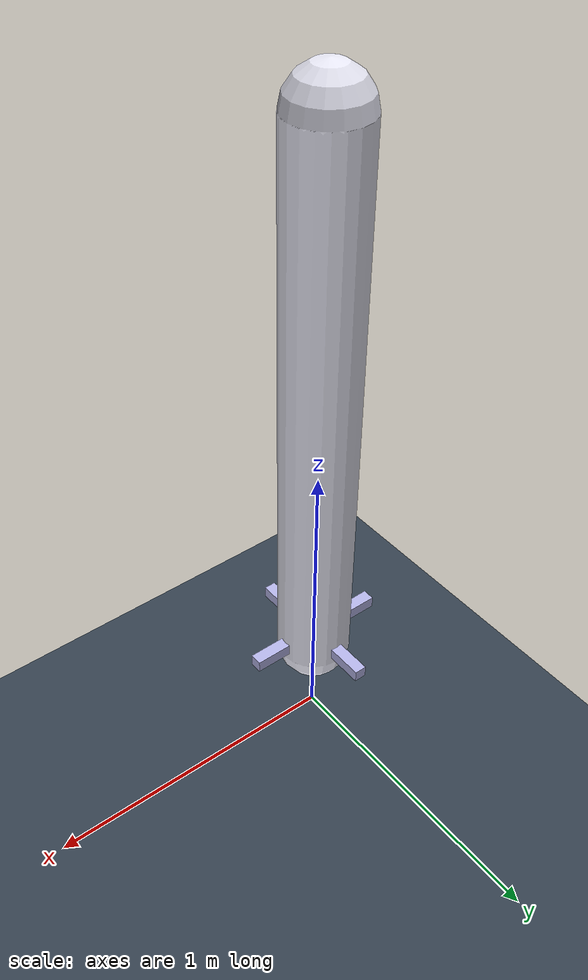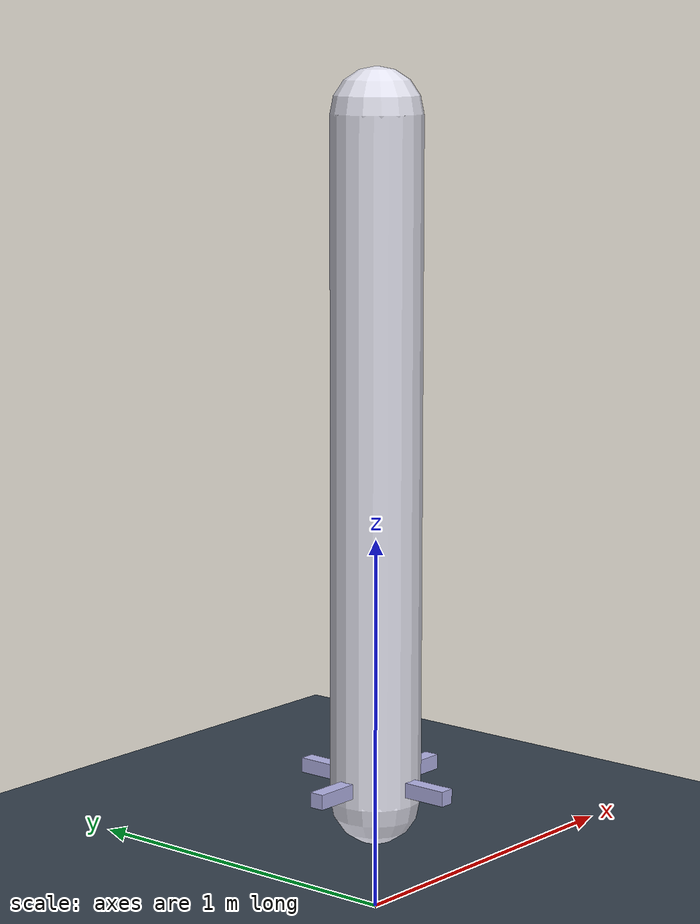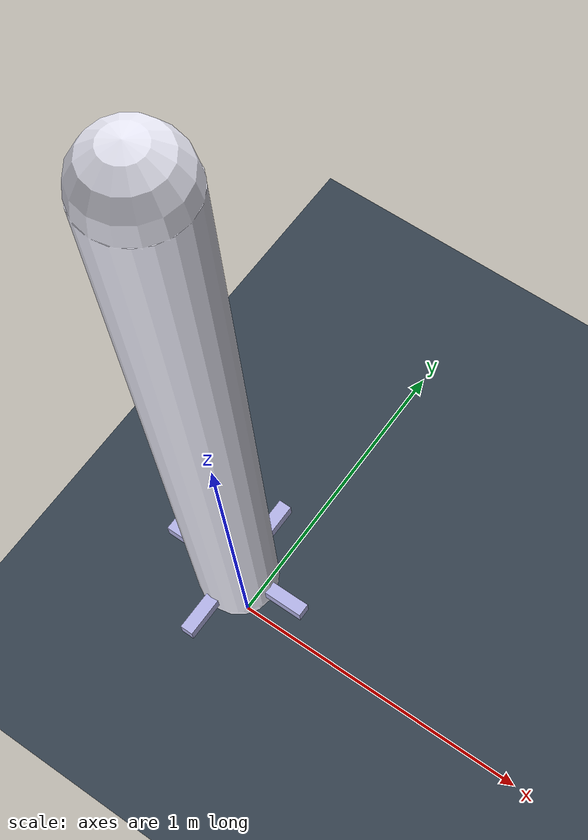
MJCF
<mujoco model="thrust_test">

  <option timestep="0.002" gravity="0 0 -9.81" integrator="RK4"/>
  <size njmax="1000" nconmax="200"/>

  <default>
    <geom rgba="0.8 0.8 0.8 1" contype="1" conaffinity="1" condim="3" friction="0.8 0.1 0.1"/>
    <joint armature="0.001" damping="0.1"/>
    <motor ctrlrange="-20 20" ctrllimited="true"/>
  </default>

  <worldbody>
    <!-- ground -->
    <geom name="ground" type="plane" pos="0 0 0" size="5 5 1" rgba="0.2 0.25 0.3 1"/>

    <!-- Rocket with free joint -->
    <body name="rocket" pos="0 0 1.2">
      <freejoint name="free"/>
      <!-- 10 kg body, simple inertia -->
      <inertial pos="0 0 0" mass="10" diaginertia="0.25 0.25 0.05"/>

      <!-- visual hull -->
      <geom name="hull" type="capsule" fromto="0 0 -0.9  0 0 0.9" size="0.12" rgba="0.9 0.9 0.95 1"/>

      <!-- fins (visual) -->
      <geom type="box" pos="0.00  0.12 -0.85" size="0.02 0.12 0.02" rgba="0.7 0.7 0.9 1"/>
      <geom type="box" pos="0.00 -0.12 -0.85" size="0.02 0.12 0.02" rgba="0.7 0.7 0.9 1"/>
      <geom type="box" pos="0.12  0.00 -0.85" size="0.12 0.02 0.02" rgba="0.7 0.7 0.9 1"/>
      <geom type="box" pos="-0.12 0.00 -0.85" size="0.12 0.02 0.02" rgba="0.7 0.7 0.9 1"/>

      <!-- Gimballed engine at bottom center -->
      <body name="engine" pos="0 0 -0.95">
        <!-- moving body must have inertial -->
        <inertial pos="0 0 0" mass="1.0" diaginertia="0.01 0.01 0.01"/>

        <!-- 2-DoF vectoring -->
        <joint name="gimbal_pitch" type="hinge" axis="1 0 0" range="-10 10" damping="0.02" limited="true"/>
        <joint name="gimbal_yaw"   type="hinge" axis="0 1 0" range="-10 10" damping="0.02" limited="true"/>

        <!-- nozzle (visual) -->

        <!-- thruster site; +Z is thrust direction -->
        <site name="thrust_site" pos="0 0 0" size="0.01" rgba="1 0.2 0.2 1"/>
      </body>
    </body>
  </worldbody>

  <actuator>
    <!-- Force-at-site actuator: control is thrust [N] along site +Z -->
    <general name="thrust" site="thrust_site"
             gear="0 0 1   0 0 0"
             ctrllimited="true" ctrlrange="0 3000" />
    <!-- Gimbal motors (apply torques to hinges) -->
    <motor name="gimbal_pitch_motor" joint="gimbal_pitch"/>
    <motor name="gimbal_yaw_motor"   joint="gimbal_yaw"/>
  </actuator>

  <sensor>
    <actuatorfrc name="thrust_readback" actuator="thrust"/>
    <velocimeter name="linvel" site="thrust_site"/>
    <accelerometer name="accel" site="thrust_site"/>
  </sensor>
</mujoco>
